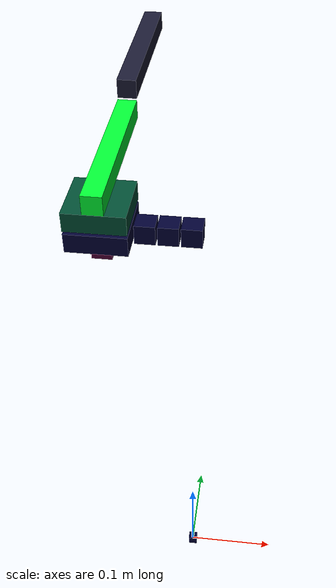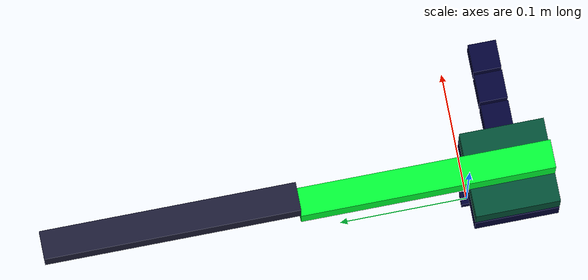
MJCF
<!-- https://mujoco.readthedocs.io/en/latest/overview.html?highlight=hello.xml#examples -->
<mujoco>
  <option gravity = "0 0 -9.81" viscosity="1">
    <flag contact="enable" />
  </option >
    <include file="stl_asstes.xml"/>
    <asset>

        <material name="aluminium" rgba="0.35 0.35 0.35 1"/>
        <material name="petg" rgba="0.7 0.7 0.75 1"/>
        <material name="carbon" rgba="0.05 0.05 0.05 1"/>
        <material name="silicone" rgba="0.612 0.11 0.42 1"/>
        <material name="pcb" rgba="0.253 0.41 0.202 1"/>
    </asset>

   <worldbody>

              <body name="chassis2" pos="0 0 0" euler="0 0 0">
         <geom type="box" size="0.005 0.005 0.005" pos = "0 0 0" rgba="0 0 0.2 1" mass = "0.3"/>
       </body>

                        <body name="encoder_0_2" pos="0 0 0.5" euler="90 90 90">

                            <joint type="free"/>

                        <geom type="box" size="0.01 0.01 0.01" pos = "0 0 0" rgba="0 0 0.2 1" euler="0 0 0"/>
                    <inertial pos="0 0 0.006" mass="0.008" fullinertia="0.00000665976 0.000014054247 0.000014432848 -0.000000796234 -0.000003221775 -0.000000490008"/>
                        <body name="gearbox_1_2" pos="0 0 -0.022" euler="0 0 0">
                    <inertial pos="0 0 0.03062" mass="0.549677" fullinertia="0.0008966 0.0008969 0.0005599 -0.000000208093 0.000000039236 -0.000000146242"/>
                        <geom type="box" size="0.01 0.01 0.01" pos = "0 0 0" rgba="0 0 0.2 1" />
                        <body name="gearbox1_spacer_2" pos="0 0.0 -0.022" euler="0 0 0">
                    <geom type="box" size="0.01 0.01 0.01" pos = "0 0 0" rgba="0 0 0.2 1"/>
                    <inertial pos="0 0 0.006" mass="0.008" fullinertia="0.00000665976 0.000014054247 0.000014432848 -0.000000796234 -0.000003221775 -0.000000490008"/>
                        <body name="spacer_3_2" pos="0 0 0" euler="0 0 0">
                    <geom type="box" size="0.0001 0.00001 0.0001" rgba=".9 .9 .9 1"/>
                    <inertial pos="0 0 0" mass="0.001" fullinertia="0.00000665976 0.000014054247 0.000014432848 -0.000000796234 -0.000003221775 -0.000000490008"/>

                            <joint name="joint0" axis="0 0 -1" pos="0 0 0" limited = "false" range = "-120 120"/>

                    <body name="gearbox2_2" pos="-0. 0 -0.042" euler="0 0 0">
                    <geom type="box" size="0.01 0.03 0.03" pos = "0 0 0" rgba="0 0 0.2 1"/>
                    <inertial pos="-0.003597 0 -0.0571" mass="0.549677" fullinertia="0.002354 0.002182 0.0003883 0.000000138325 -0.0001131 -0.00000158513"/>
                        <body name="encoder_1_2" pos="-0.021 0 -0." euler="0 -90 0 ">
                    <geom type="box" size="0.01 0.01 0.01" pos = "0 0 0" rgba="0.3 0 0.2 1"/>
                    <inertial pos="0 0 0.006" mass="0.008" fullinertia="0.00000665976 0.000014054247 0.000014432848 -0.000000796234 -0.000003221775 -0.000000490008"/>
                        <body name="spacer_0_2" pos="0 0 -0.042" euler="0 0 0">
                    <geom type="box" size="0.0001 0.00001 0.0001" rgba=".9 .9 .9 1"/>
                    <inertial pos="0 0 0" mass="0.001" fullinertia="0.00000665976 0.000014054247 0.000014432848 -0.000000796234 -0.000003221775 -0.000000490008"/>

                            <site name="torq1" pos="0 0 0" size="0.0001" rgba="0 0 0 1"/>
                            <joint name="joint1" axis="0 0 -1" pos="0 0 0" limited = "false" range = "-120 120"/>

                        <body name="gearbox_3_2" pos="0 0 -0.002" euler="0 180 0">
                    <geom type="box" size="0.03 0.03 0.01" pos = "0 0 0" rgba="0 0.3 0.2 1"/>
                    <inertial pos="0 0 0.03062" mass="0.549677" fullinertia="0.0008966 0.0008969 0.0005599 -0.000000208093 0.000000039236 -0.000000146242"/>
                        <body name="upper_leg_2" pos="0. -0.06 0.02" euler="0 180 90">
                    <geom type="box" size="0.09 0.01 0.01" pos = "0 0 0" rgba="0 1 0.2 1"/>
                    <inertial pos="-0.065247 0 -0.012792" mass="0.113615" fullinertia="0.000037213733 0.0008028 0.0007791 0.000000319788 -0.000092327798 0.000000061466"/>

                        <body name="spacer_1_2" pos="-0.09 0 -0.022" euler="0 0 0">
                    <geom type="box" size="0.0001 0.00001 0.0001" rgba=".9 .9 .9 1"/>
                    <inertial pos="0 0 0" mass="0.001" fullinertia="0.00000665976 0.000014054247 0.000014432848 -0.000000796234 -0.000003221775 -0.000000490008"/>

                    <joint name="joint2" axis="0 0 -1" pos="0 0 0" limited = "false" range = "-120 120"/>
                        <body name="lower_leg_2" pos="-0.09 0 0" euler="0 180 0">
                    <geom type="box" size="0.09 0.01 0.01" pos = "0 0 0" rgba="0.1 0.1 0.2 1"/>
                    <inertial pos="0.0733980 0.0000000 -0.0084740" mass="0.0445630" fullinertia="0.0000060 0.0003640 0.0003596 0.0000002 0.0000276 0.0000000"/>

</body>
</body>
</body>
</body>
</body>
</body>
</body>
</body>
</body>
</body>
</body>

   </worldbody>

<include file="sensor_actuator.xml"/>

</mujoco>

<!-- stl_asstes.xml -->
<mujoco>
    <asset>
        <mesh file="meshes/front_alu_3.STL" />
        <mesh file="meshes/front_alu_1.STL"/>
        <mesh file="meshes/back_alu_1.STL"/>
        <mesh file="meshes/back_alu_2.STL"/>
        <mesh file="meshes/battery.STL"/>
        <mesh file="meshes/logic.STL"/>
        <mesh file="meshes/case1.STL"/>
        <mesh file="meshes/case2.STL"/>
        <mesh file="meshes/logic2.STL"/>
        <mesh file="meshes/electronics.STL"/>
        <mesh file="meshes/encoder.STL"/>
        <mesh file="meshes/gearbox_1.STL"/>
        <mesh file="meshes/gearbox_3.STL"/>
        <mesh file="meshes/gearbox1_spacer.STL"/>
        <mesh file="meshes/gearbox2.STL"/>
        <mesh file="meshes/lower_leg.STL"/>
        <mesh file="meshes/upper_leg_belt.STL"/>
        <mesh file="meshes/upper_leg.STL"/>
        <mesh file="meshes/spacer_spine.STL"/>
    </asset>
</mujoco>

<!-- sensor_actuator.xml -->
<mujoco>
    <sensor>

        <jointpos name="jointpos1" joint="joint1" />

        <jointvel name="jointvel1" joint="joint1" />
        <torque name="torqu1" site="torq1" />

    </sensor>

    <actuator>
<motor name="torque1" joint="joint0"  gear="1" ctrllimited="false" ctrlrange="-10 10" forcelimited = "true" forcerange = "-2.3 2.3"/>
       <motor name="torque2" joint="joint1"  gear="1" ctrllimited="false" ctrlrange="-10 10" forcelimited = "true" forcerange = "-2.3 2.3"/>
        <motor name="torque3" joint="joint2"  gear="1" ctrllimited="false" ctrlrange="-10 10" forcelimited = "true" forcerange = "-2.3 2.3"/>
    </actuator>
</mujoco>
